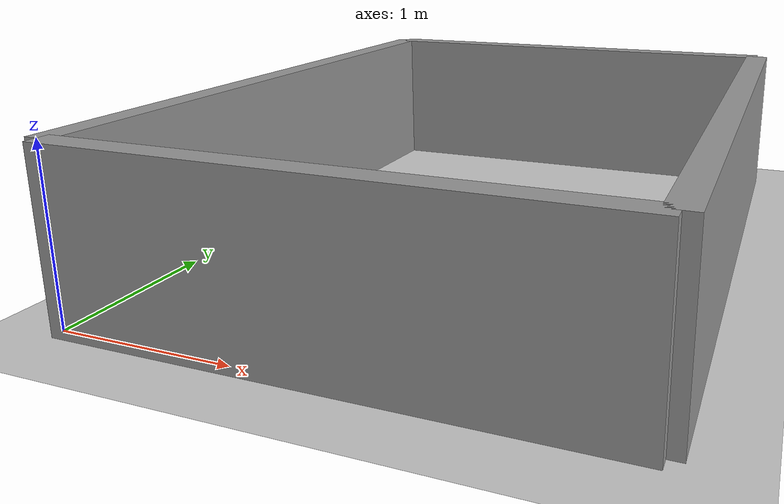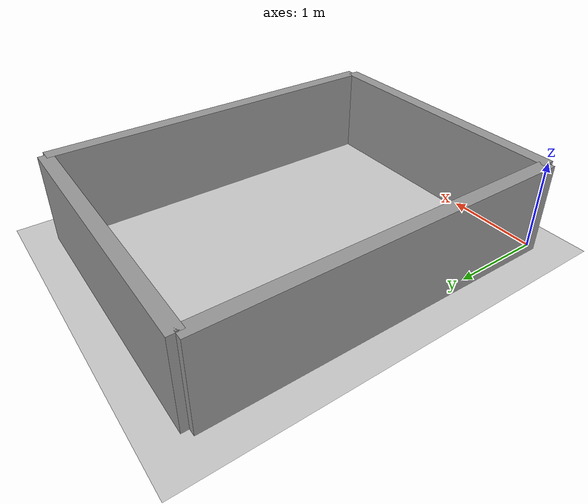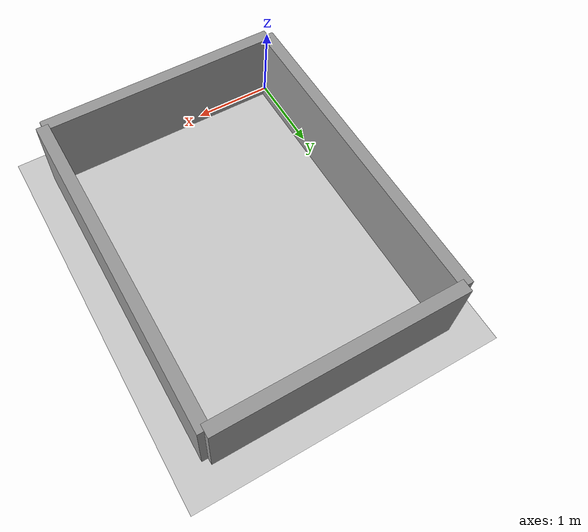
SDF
<sdf version="1.4">
 <world name="default">
  <physics type="ode">
   <gravity>0 0 -9.81</gravity>
   <ode>
    <solver><type>quick</type><iters>20</iters><sor>1.0</sor></solver>
    <constraints>
     <cfm>0.0</cfm>
     <erp>0.2</erp>
     <contact_max_correcting_vel>100.0</contact_max_correcting_vel>
     <contact_surface_layer>0.0</contact_surface_layer>
    </constraints>
   </ode>
   <real_time_update_rate>1000</real_time_update_rate>
   <max_step_size>0.001</max_step_size>
  </physics>
  <include><uri>model://sun</uri></include>
  <model name="ground_plane">
   <static>1</static>
   <link name="link">
    <collision name="collision">
     <geometry><plane><normal>0 0 1</normal><size>32 42</size></plane></geometry>
     <surface><friction><ode><mu>2000</mu><mu2>2000</mu2></ode></friction></surface>
    </collision>
    <visual name="visual">
     <cast_shadows>0</cast_shadows>
     <geometry><plane><normal>0 0 1</normal><size>100 100</size></plane></geometry>
     <material>
      <script><uri>file://media/materials/scripts/gazebo.material</uri><name>Gazebo/Grey</name></script>
     </material>
    </visual>
   </link>
  </model>
  <model name="Wall_0">
   <pose>1.5 0 0.5 0 0 0</pose>
   <link name="Wall_0">
    <collision name="Wall_0_Collision"><geometry><box><size>3 0.15 1</size></box></geometry></collision>
    <visual name="Wall_0_Visual">
     <geometry><box><size>3 0.15 1</size></box></geometry>
     <material>
      <script><uri>file://media/materials/scripts/gazebo.material</uri><name>Gazebo/Grey</name></script>
      <ambient>1 1 1 1</ambient>
     </material>
    </visual>
   </link>
   <static>1</static>
  </model>
  <model name="Wall_1">
   <pose>0 2 0.5 0 0 0</pose>
   <link name="Wall_1">
    <collision name="Wall_1_Collision"><geometry><box><size>0.15 4 1</size></box></geometry></collision>
    <visual name="Wall_1_Visual">
     <geometry><box><size>0.15 4 1</size></box></geometry>
     <material>
      <script><uri>file://media/materials/scripts/gazebo.material</uri><name>Gazebo/Grey</name></script>
      <ambient>1 1 1 1</ambient>
     </material>
    </visual>
   </link>
   <static>1</static>
  </model>
  <model name="Wall_2">
   <pose>3 2 0.5 0 0 0</pose>
   <link name="Wall_2">
    <collision name="Wall_2_Collision"><geometry><box><size>0.15 4 1</size></box></geometry></collision>
    <visual name="Wall_2_Visual">
     <geometry><box><size>0.15 4 1</size></box></geometry>
     <material>
      <script><uri>file://media/materials/scripts/gazebo.material</uri><name>Gazebo/Grey</name></script>
      <ambient>1 1 1 1</ambient>
     </material>
    </visual>
   </link>
   <static>1</static>
  </model>
  <model name="Wall_3">
   <pose>1.5 4 0.5 0 0 0</pose>
   <link name="Wall_3">
    <collision name="Wall_3_Collision"><geometry><box><size>3 0.15 1</size></box></geometry></collision>
    <visual name="Wall_3_Visual">
     <geometry><box><size>3 0.15 1</size></box></geometry>
     <material>
      <script><uri>file://media/materials/scripts/gazebo.material</uri><name>Gazebo/Grey</name></script>
      <ambient>1 1 1 1</ambient>
     </material>
    </visual>
   </link>
   <static>1</static>
  </model>
 </world>
</sdf>
